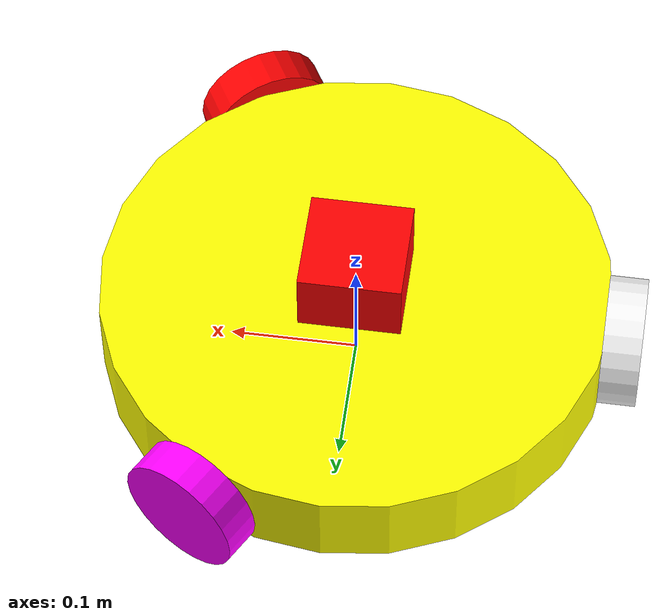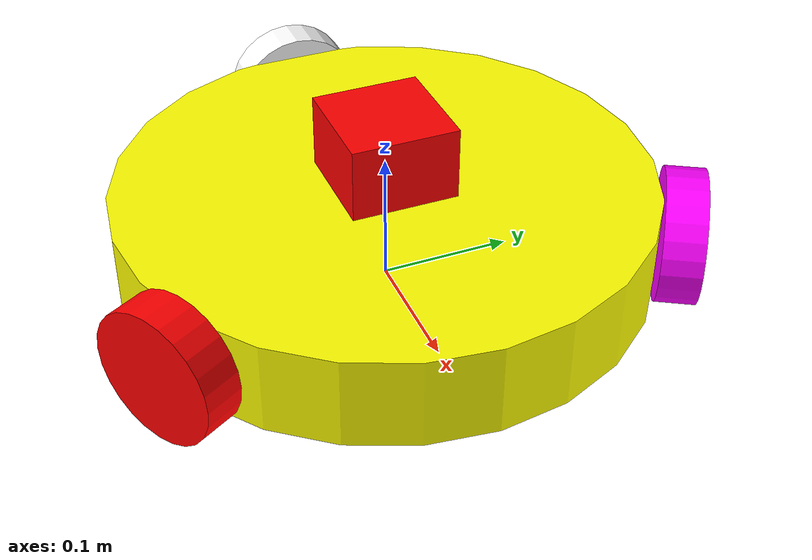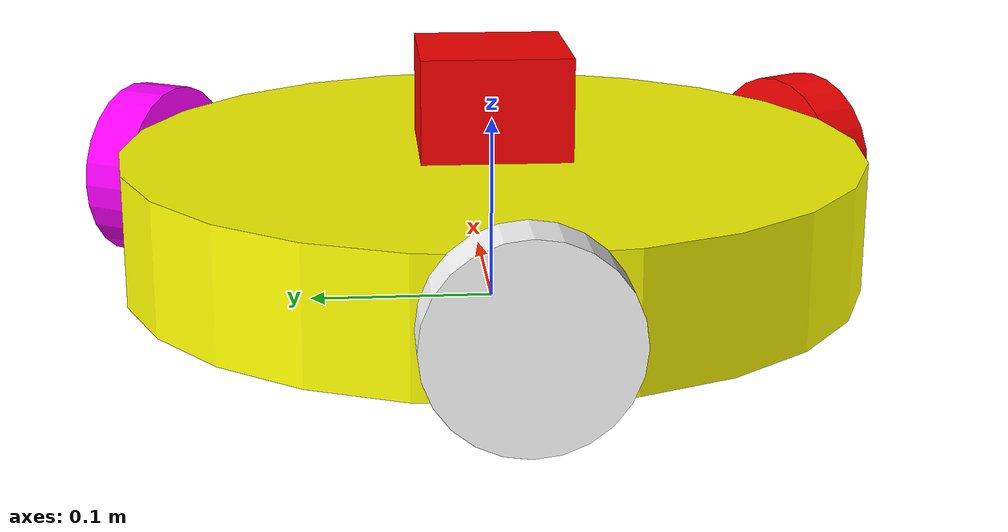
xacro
<?xml version="1.0"?>

<robot name="myrobot" xmlns:xacro="http://www.ros.org/wiki/xacro">

<link name="base_footprint">
</link>

<link name="odom">

</link>
<joint name="odom_link" type="fixed">
  <origin xyz="0.0 0.0 0.0" rpy="0.0 0.0 0.0"/>
  <parent link="base_footprint"/>
  <child link="odom"/>
  <axis xyz="0.0 0.0 0.0"/>
  <limit lower="0.0" upper="0.0" effort="0.0" velocity="0.0"/>
</joint>

<link name="base_link">
    <pose>0 0 0.1 0 0 0</pose>

       <inertial>
      <mass value="15.0"/>
      <origin xyz="0.0 0 0" rpy=" 0 0 0"/>
      <inertia
          ixx="0.1" ixy="0" ixz="0"
          iyy="0.1" iyz="0"
          izz="0.1"
      />
    </inertial>

    <collision name='collision'>
      <origin xyz="0 0 0" rpy=" 0 0 0"/>
      <geometry>
        <cylinder radius="0.2" length="0.07"/>
      </geometry>
    </collision>

    <visual name="base_link_visual">
      <origin xyz="0 0 0" rpy=" 0 0 0"/>
      <geometry>
        <cylinder radius="0.2" length="0.07"/>
      </geometry>
      <material name="yellow">
        <color rgba="1.0 1.0 0.0 1.0"/>
        <texture filename=""/>
      </material>
    </visual>
</link>

 <joint name="base_joint" type="fixed">
    <origin xyz="0 0 0.05" rpy="0 0 0" />
    <parent link="odom"/>
    <child link="base_link" />
    <axis xyz="1 0 0" rpy="0 0 0"/>
  </joint>

<link name="right_wheel_link">
    <pose>0 0 0.1 0 0 0</pose>
     <inertial>
	   <mass value="3.0"/>
	     <origin xyz="0 0 0" rpy=" 0 0 0"/>
		 <inertia
		      ixx="0.1" ixy="0" ixz="0"
		      iyy="0.1" iyz="0"
		      izz="0.1"
		 />
	 </inertial>

	 <collision name=''>
	   <origin xyz="0 0 0" rpy=" 0 0 0"/>
	   <geometry>
	     <cylinder radius="0.05" length="0.03"/>
	   </geometry>
	 </collision>

	 <visual name=''>
	   <origin xyz="0 0 0" rpy=" 0 0 0"/>
	     <geometry>
		   <cylinder radius="0.05" length="0.03"/>
		 </geometry>
        <material name="red">
        <color rgba="1.0 .0 0.0 1.0"/>
        <texture filename=""/>
      </material>
	 </visual>
</link>

<link name="back_wheel_link">
      <pose>0 0 0.1 0 0 0</pose>
     <inertial>
	   <mass value="3.0"/>
	     <origin xyz="0 0 0" rpy=" 0 0 0"/>
		 <inertia
		      ixx="0.1" ixy="0" ixz="0"
		      iyy="0.1" iyz="0"
		      izz="0.1"
		 />
	 </inertial>

	 <collision name=''>
	   <origin xyz="0 0 0" rpy=" 0 0 0"/>
	   <geometry>
	     <cylinder radius="0.05" length="0.03"/>
	   </geometry>
	 </collision>

	 <visual name='wight'>
	   <origin xyz="0 0 0" rpy=" 0 0 0"/>
	     <geometry>
		   <cylinder radius="0.05" length="0.03"/>
		 </geometry>
        <material name="">
        <color rgba="1.0 1.0 1.0 1.0"/>
        <texture filename=""/>
      </material>
	 </visual>
</link>

<link name="left_wheel_link">
      <pose>0 0 0.1 0 0 0</pose>
     <inertial>
	   <mass value="3.0"/>
	     <origin xyz="0 0 0" rpy=" 0 0 0"/>
		 <inertia
		      ixx="0.1" ixy="0" ixz="0"
		      iyy="0.1" iyz="0"
		      izz="0.1"
		 />
	 </inertial>

	 <collision name=''>
	   <origin xyz="0 0 0" rpy=" 0 0 0"/>
	   <geometry>
	     <cylinder radius="0.05" length="0.03"/>
	   </geometry>
	 </collision>

	 <visual name='perple'>
	   <origin xyz="0 0 0" rpy=" 0 0 0"/>
	     <geometry>
		   <cylinder radius="0.05" length="0.03"/>
		 </geometry>
        <material name="">
        <color rgba="1.0 .0 1.0 1.0"/>
        <texture filename=""/>
      </material>
	 </visual>
</link>
<link name="Imu_link">
      <pose>0 0 0.1 0 0 0</pose>
     <inertial>
	   <mass value="3.0"/>
	     <origin xyz="0 0 0" rpy=" 0 0 0"/>
		 <inertia
		      ixx="0.1" ixy="0" ixz="0"
		      iyy="0.1" iyz="0"
		      izz="0.1"
		 />
	 </inertial>

	 <collision name=''>
	   <origin xyz="0 0 0" rpy=" 0 0 0"/>
	   <geometry>
	     <box size="0.08 0.08 0.08"/>
	   </geometry>
	 </collision>

	 <visual name='red'>
	   <origin xyz="0 0 0.0" rpy=" 0 0 0"/>
	     <geometry>
		    <box size="0.08 0.08 0.08"/>
		 </geometry>
        <material name="">
        <color rgba="1.0 .0 0.0 1.0"/>
        <texture filename=""/>
      </material>
	 </visual>
</link>

  <joint name="right_wheel_joint" type="continuous">
    <parent link="base_link"/>
    <child link="right_wheel_link"/>
      <origin xyz="0.1 -0.19 0" rpy="1.5707 0 0.523599"/>

      <axis xyz="0 0 -1" rpy="0 0 0"/>
      <limit effort="10" velocity="100"/>
      <dynamics damping="1.0" friction="0.1"/>
  </joint>

  <joint name="back_wheel_joint" type="continuous">
    <parent link="base_link"/>
    <child link="back_wheel_link"/>
     <origin xyz="-0.21 0.0 0" rpy="1.5707 0 -1.5707"/>

      <axis xyz="0 0 -1" rpy="0 0 0"/>
      <limit effort="10" velocity="100"/>
      <dynamics damping="1.0" friction="0.1"/>

  </joint>

  <joint name="left_wheel_joint" type="continuous">
    <parent link="base_link"/>
    <child link="left_wheel_link"/>
     <origin xyz="0.1 0.19 0" rpy="-1.5707 0 -0.523599"/>

      <axis xyz="0 0 1" rpy="0 0 0"/>
      <limit effort="10" velocity="100"/>
      <dynamics damping="1.0" friction="0.1"/>

  </joint>

  <joint name="imu_joint" type="fixed">
    <parent link="base_footprint"/>
    <child link="Imu_link"/>
    <origin xyz="0.0 0.0 0.1" rpy="0.0 0.0 0.0"/>
  </joint>
</robot>
